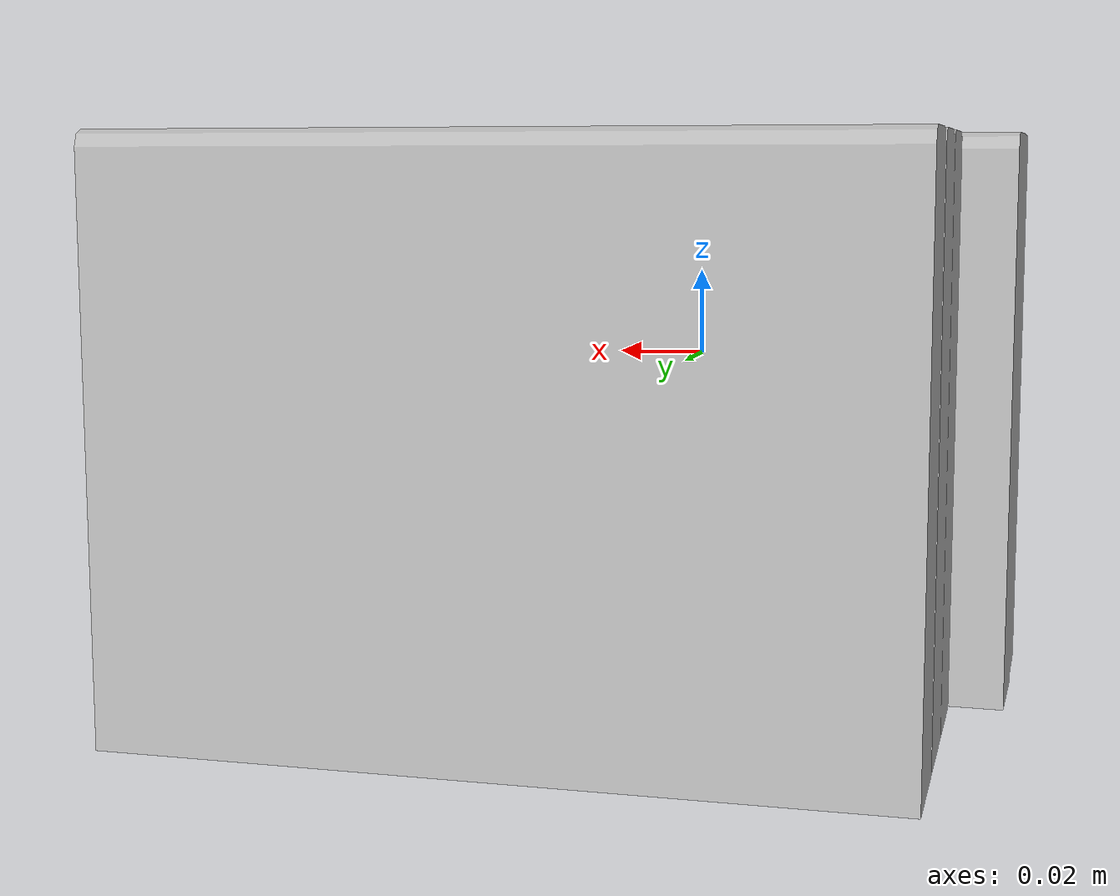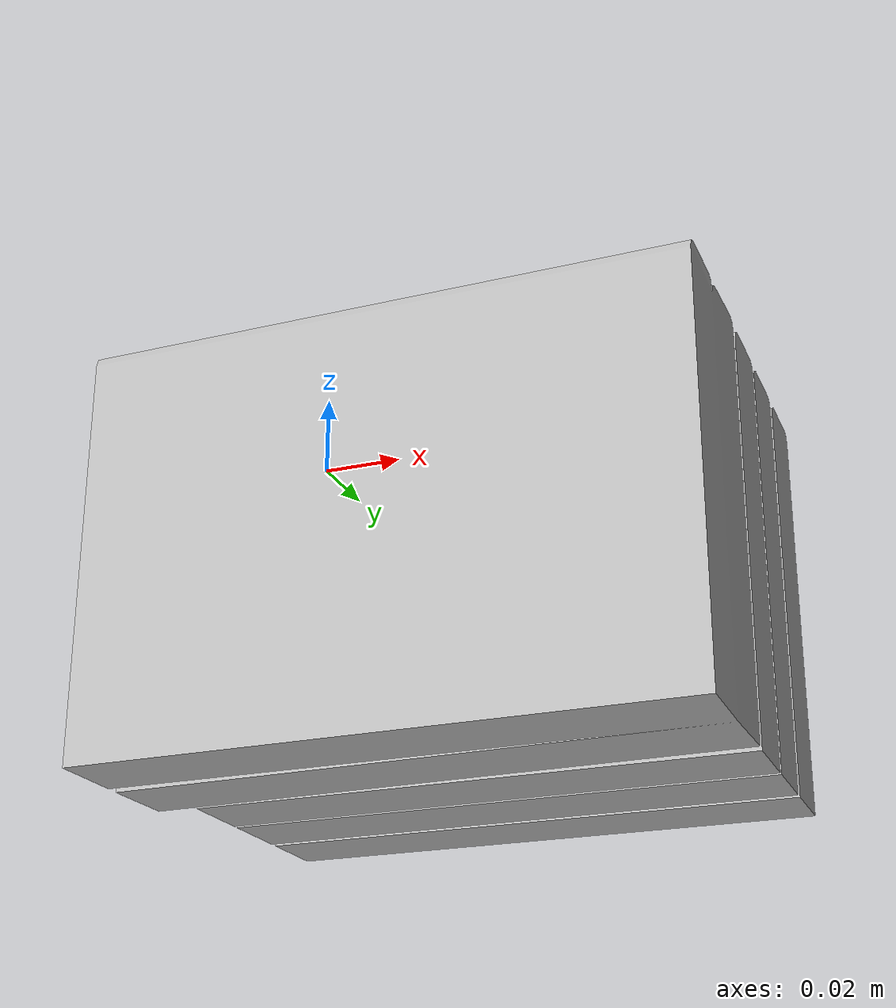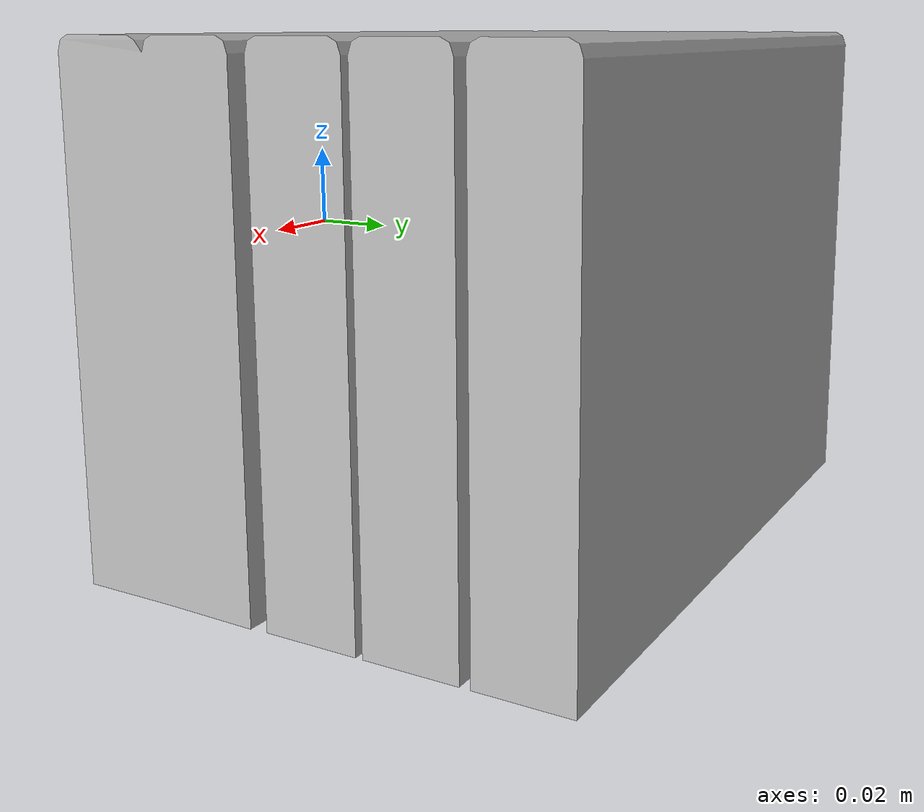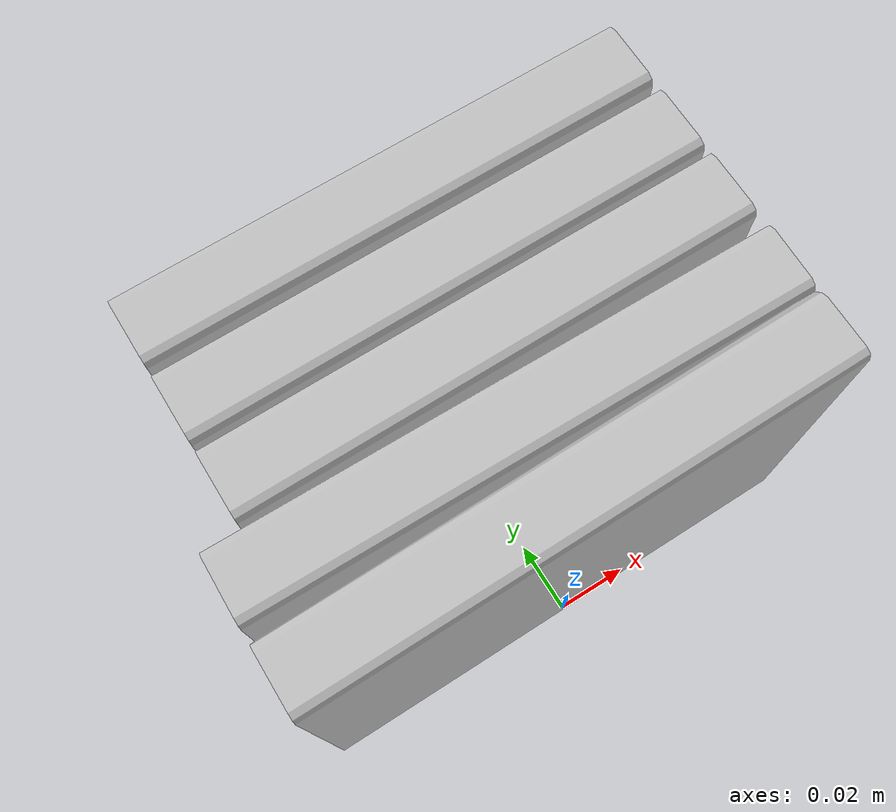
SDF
<?xml version="1.0" ?>
<sdf version="1.4">
  <model name="shelf1_book1_h1">
    <link name="body">
      <pose>0 0 0 0 0 0</pose>
      <inertial>
        <pose>   0.013378   0.065215  -0.009132 0 0 0</pose>
        <mass>0.5</mass>
        <inertia>
          <ixx>0.01</ixx>
          <ixy>0</ixy>
          <ixz>0</ixz>
          <iyy>0.01</iyy>
          <iyz>0</iyz>
          <izz>0.01</izz>
        </inertia>
      </inertial>
      <collision name="collision">
        <geometry>
          <mesh>
            <uri>model://bookshelf/shelf1_items/book1_h1/book1_h1.dae</uri>
          </mesh>
        </geometry>
      </collision>
      <visual name="visual">
        <geometry>
          <mesh>
            <uri>model://bookshelf/shelf1_items/book1_h1/book1_h1.dae</uri>
          </mesh>
        </geometry>
      </visual>
    </link>
  </model>
</sdf>
